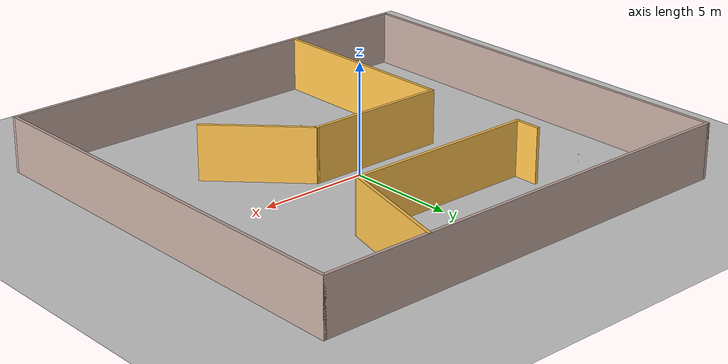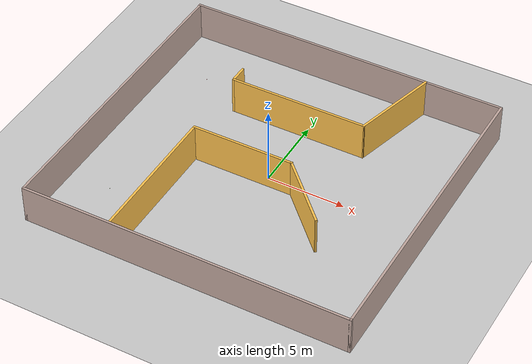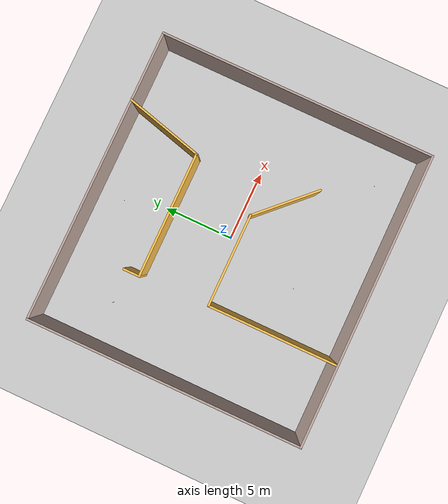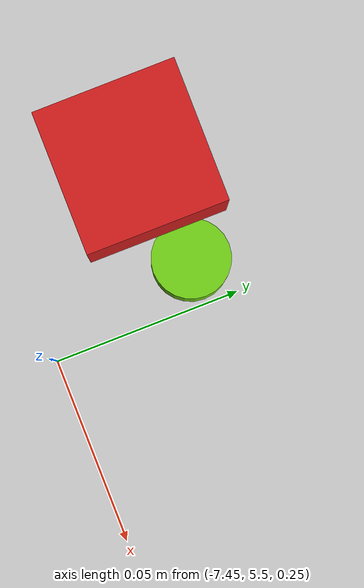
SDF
<?xml version="1.0" ?>
<sdf version="1.4">
  <world name="default">
    <gui fullscreen='0'>
      <camera name='user_camera'>
        <pose frame=''>8.18313 -3.28715 9.77259 0 0.855643 2.7162</pose>
        <view_controller>orbit</view_controller>
        <projection_type>perspective</projection_type>
      </camera>
    </gui>
    <physics type="ode">
      <gravity>0 0 -9.8</gravity>
      <ode>
        <solver>
          <type>quick</type>
          <iters>20</iters>
          <sor>1.0</sor>
        </solver>
        <constraints>
          <cfm>0.0</cfm>
          <erp>0.2</erp>
          <contact_max_correcting_vel>100.0</contact_max_correcting_vel>
          <contact_surface_layer>0.0</contact_surface_layer>
        </constraints>
      </ode>
      <max_step_size>0.001</max_step_size>
    </physics>
    <!-- A global light source -->
    <include>
      <uri>model://sun</uri>
    </include>
    <!-- A ground plane -->
    <include>
      <uri>model://ground_plane</uri>
    </include>
    <include>
      <uri>model://usar</uri>
      <pose>0 0 0.001 0 0 0</pose>
    </include>

    <model name="aruco_marker_0">
      <pose>4.803741 7.689550 0.4 0 0 2.857363</pose>
      <include>
        <name>aruco_marker_0</name>
        <uri>model://aruco_marker_0</uri>
      </include>
    </model>

    <model name="cylinder_1">
      <pose>-1.372126 -5.429016 0.274994 0 0 0</pose>
      <include>
        <name>cylinder_1</name>
        <uri>model://cylinder_green</uri>
      </include>
    </model>

    <model name="cylinder_2">
      <pose>-7.531620 -5.506830 0.274994 0 0 0</pose>
      <include>
        <name>cylinder_2</name>
        <uri>model://cylinder_green</uri>
      </include>
    </model>

    <model name="cylinder_3">
      <pose>-7.460810 5.541130 0.274994 0 0 0</pose>
      <include>
        <name>cylinder_3</name>
        <uri>model://cylinder_green</uri>
      </include>
    </model>

    <model name="cylinder_4">
      <pose>-0.727859 7.925042 0.274994 0 0 0</pose>
      <include>
        <name>cylinder_4</name>
        <uri>model://cylinder_green</uri>
      </include>
    </model>
    <model name="cylinder_5">
      <pose>7.499000 4.489690 0.274994 0 0 0</pose>
      <include>
        <name>cylinder_5</name>
        <uri>model://cylinder_green</uri>
      </include>
    </model>

    <model name="cylinder_6">
      <pose>7.572780 -7.596420 0.274994 0 0 0</pose>
      <include>
        <name>cylinder_6</name>
        <uri>model://cylinder_blue</uri>
      </include>
    </model>
    <model name="cube_1">
      <pose>-7.462762 5.530112 0.584022 0 0 0</pose>
      <include>
        <name>cube_red</name>
        <uri>model://cube_red</uri>
      </include>
    </model>
  </world>
</sdf>

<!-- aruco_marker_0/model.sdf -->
<sdf version='1.6'>
  <model name='aruco_marker_0'>
    <link name='link_0'>
      <pose frame=''>0 0 0 0 -0 0</pose>
      <inertial>
        <mass>1</mass>
        <inertia>
          <ixx>0</ixx>
          <ixy>0</ixy>
          <ixz>0</ixz>
          <iyy>0</iyy>
          <iyz>0</iyz>
          <izz>0</izz>
        </inertia>
      </inertial>
      <visual name='visual'>
        <pose frame=''>0 0 0 0 -0 0</pose>
        <geometry>
          <mesh>
            <uri>file://isr-testbed/aruco_marker_0/aruco_marker_0.dae</uri>
            <scale>0.1 0.1 0.1</scale>
          </mesh>
        </geometry>
        <material>
          <lighting>1</lighting>
          <script>
            <uri>file://media/materials/scripts/gazebo.material</uri>
            <name>Gazebo/DepthMapVS</name>
          </script>
          <ambient>0.3 0.3 0.3 1</ambient>
          <diffuse>0.7 0.7 0.7 1</diffuse>
          <specular>0.01 0.01 0.01 1</specular>
          <emissive>0 0 0 1</emissive>
        </material>
        <transparency>0</transparency>
        <cast_shadows>1</cast_shadows>
      </visual>
      <collision name='collision'>
        <laser_retro>0</laser_retro>
        <max_contacts>10</max_contacts>
        <pose frame=''>0 0 0 0 -0 0</pose>
        <geometry>
          <mesh>
            <uri>file://isr-testbed/aruco_marker_0/aruco_marker_0.dae</uri>
            <scale>0.1 0.1 0.1</scale>
          </mesh>
        </geometry>
        <surface>
          <friction>
            <ode>
              <mu>1</mu>
              <mu2>1</mu2>
              <fdir1>0 0 0</fdir1>
              <slip1>0</slip1>
              <slip2>0</slip2>
            </ode>
            <torsional>
              <coefficient>1</coefficient>
              <patch_radius>0</patch_radius>
              <surface_radius>0</surface_radius>
              <use_patch_radius>1</use_patch_radius>
              <ode>
                <slip>0</slip>
              </ode>
            </torsional>
          </friction>
          <bounce>
            <restitution_coefficient>0</restitution_coefficient>
            <threshold>1e+06</threshold>
          </bounce>
          <contact>
            <collide_without_contact>0</collide_without_contact>
            <collide_without_contact_bitmask>1</collide_without_contact_bitmask>
            <collide_bitmask>1</collide_bitmask>
            <ode>
              <soft_cfm>0</soft_cfm>
              <soft_erp>0.2</soft_erp>
              <kp>1e+13</kp>
              <kd>1</kd>
              <max_vel>0.01</max_vel>
              <min_depth>0</min_depth>
            </ode>
            <bullet>
              <split_impulse>1</split_impulse>
              <split_impulse_penetration_threshold>-0.01</split_impulse_penetration_threshold>
              <soft_cfm>0</soft_cfm>
              <soft_erp>0.2</soft_erp>
              <kp>1e+13</kp>
              <kd>1</kd>
            </bullet>
          </contact>
        </surface>
      </collision>
    </link>
    <static>1</static>
    <allow_auto_disable>1</allow_auto_disable>
  </model>
</sdf>

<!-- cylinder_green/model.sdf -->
<sdf version='1.6'>
  <model name='cylinder_green'>
    <link name='link_1'>
      <inertial>
        <mass>1e-4</mass>
        <inertia>
          <ixx>1.0e-8</ixx>
          <ixy>0</ixy>
          <ixz>0</ixz>
          <iyy>1.0e-8</iyy>
          <iyz>0</iyz>
          <izz>1.0e-8</izz>
        </inertia>
        <pose frame=''>0 0 0 0 -0 0</pose>
      </inertial>
      <pose frame=''>0 0 0 0 -0 0</pose>
      <gravity>1</gravity>
      <self_collide>0</self_collide>
      <kinematic>0</kinematic>
      <enable_wind>0</enable_wind>
      <visual name='visual'>
        <pose frame=''>0 0 0 0 -0 0</pose>
        <geometry>
          <cylinder>
            <radius>0.01</radius>
            <length>0.02</length>
          </cylinder>
        </geometry>
        <material>
          <lighting>1</lighting>
          <script>
            <uri>file://media/materials/scripts/gazebo.material</uri>
            <name>Gazebo/Grey</name>
          </script>
          <shader type='vertex'>
            <normal_map>__default__</normal_map>
          </shader>
          <ambient>0.208 0.706 0.298 1</ambient>
          <diffuse>0.451 0.824 0.082 1</diffuse>
          <specular>0.18 0.204 0.212 1</specular>
          <emissive>0 0 0 1</emissive>
        </material>
        <transparency>0</transparency>
        <cast_shadows>1</cast_shadows>
      </visual>
      <collision name='collision'>
        <laser_retro>0</laser_retro>
        <max_contacts>50</max_contacts>
        <pose frame=''>0 0 0 0 -0 0</pose>
        <geometry>
          <cylinder>
            <radius>0.01</radius>
            <length>0.02</length>
          </cylinder>
        </geometry>
        <surface>
          <friction>
            <ode>
              <mu>1e+6</mu>
              <mu2>1e+6</mu2>
            </ode>
            <torsional>
              <coefficient>1</coefficient>
              <patch_radius>0</patch_radius>
              <surface_radius>0</surface_radius>
              <use_patch_radius>1</use_patch_radius>
              <ode>
                <slip>0</slip>
              </ode>
            </torsional>
          </friction>
          <bounce>
            <restitution_coefficient>0</restitution_coefficient>
            <threshold>1e+06</threshold>
          </bounce>
          <contact>
            <collide_without_contact>0</collide_without_contact>
            <collide_without_contact_bitmask>1</collide_without_contact_bitmask>
            <collide_bitmask>1</collide_bitmask>
            <ode>
              <soft_cfm>0</soft_cfm>
              <soft_erp>0.2</soft_erp>
              <kp>1e+13</kp>
              <kd>1</kd>
              <max_vel>0.0</max_vel>
              <min_depth>0.002</min_depth>
            </ode>
            <bullet>
              <split_impulse>1</split_impulse>
              <split_impulse_penetration_threshold>-0.01</split_impulse_penetration_threshold>
              <soft_cfm>0</soft_cfm>
              <soft_erp>0.2</soft_erp>
              <kp>1e+13</kp>
              <kd>1</kd>
            </bullet>
          </contact>
        </surface>
      </collision>
    </link>
    <static>0</static>
    <allow_auto_disable>1</allow_auto_disable>
  </model>
</sdf>

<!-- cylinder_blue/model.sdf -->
<sdf version='1.6'>
  <model name='cylinder_blue'>
    <link name='link_1'>
      <inertial>
        <mass>1e-4</mass>
        <inertia>
          <ixx>1.0e-8</ixx>
          <ixy>0</ixy>
          <ixz>0</ixz>
          <iyy>1.0e-8</iyy>
          <iyz>0</iyz>
          <izz>1.0e-8</izz>
        </inertia>
        <pose frame=''>0 0 0 0 -0 0</pose>
      </inertial>
      <pose frame=''>0 0 0 0 -0 0</pose>
      <gravity>1</gravity>
      <self_collide>0</self_collide>
      <kinematic>0</kinematic>
      <enable_wind>0</enable_wind>
      <visual name='visual'>
        <pose frame=''>0 0 0 0 -0 0</pose>
        <geometry>
          <cylinder>
            <radius>0.01</radius>
            <length>0.02</length>
          </cylinder>
        </geometry>
        <material>
          <lighting>1</lighting>
          <script>
            <uri>file://media/materials/scripts/gazebo.material</uri>
            <name>Gazebo/Grey</name>
          </script>
          <shader type='vertex'>
            <normal_map>__default__</normal_map>
          </shader>
          <ambient>0.204 0.396 0.643 1</ambient>
          <diffuse>0.204 0.396 0.643 1</diffuse>
          <specular>0.333 0.341 0.325 1</specular>
          <emissive>0 0 0 1</emissive>
        </material>
        <transparency>0</transparency>
        <cast_shadows>1</cast_shadows>
      </visual>
      <collision name='collision'>
        <laser_retro>0</laser_retro>
        <max_contacts>50</max_contacts>
        <pose frame=''>0 0 0 0 -0 0</pose>
        <geometry>
          <cylinder>
            <radius>0.01</radius>
            <length>0.02</length>
          </cylinder>
        </geometry>
        <surface>
          <friction>
            <ode>
              <mu>1e+6</mu>
              <mu2>1e+6</mu2>
            </ode>
            <torsional>
              <coefficient>1</coefficient>
              <patch_radius>0</patch_radius>
              <surface_radius>0</surface_radius>
              <use_patch_radius>1</use_patch_radius>
              <ode>
                <slip>0</slip>
              </ode>
            </torsional>
          </friction>
          <bounce>
            <restitution_coefficient>0</restitution_coefficient>
            <threshold>1e+06</threshold>
          </bounce>
          <contact>
            <collide_without_contact>0</collide_without_contact>
            <collide_without_contact_bitmask>1</collide_without_contact_bitmask>
            <collide_bitmask>1</collide_bitmask>
            <ode>
              <soft_cfm>0</soft_cfm>
              <soft_erp>0.2</soft_erp>
              <kp>1e+13</kp>
              <kd>1</kd>
              <max_vel>0.0</max_vel>
              <min_depth>0.002</min_depth>
            </ode>
            <bullet>
              <split_impulse>1</split_impulse>
              <split_impulse_penetration_threshold>-0.01</split_impulse_penetration_threshold>
              <soft_cfm>0</soft_cfm>
              <soft_erp>0.2</soft_erp>
              <kp>1e+13</kp>
              <kd>1</kd>
            </bullet>
          </contact>
        </surface>
      </collision>
    </link>
    <static>0</static>
    <allow_auto_disable>1</allow_auto_disable>
  </model>
</sdf>

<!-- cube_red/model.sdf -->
<sdf version='1.6'>
  <model name='cube_red'>
    <link name='link_1'>
      <inertial>
        <mass>1e-4</mass>
        <inertia>
          <ixx>1.0e-8</ixx>
          <ixy>0</ixy>
          <ixz>0</ixz>
          <iyy>1.0e-8</iyy>
          <iyz>0</iyz>
          <izz>1.0e-8</izz>
        </inertia>
        <pose frame=''>0 0 0 0 -0 0</pose>
      </inertial>
      <pose frame=''>0 0 0 0 -0 0</pose>
      <gravity>1</gravity>
      <self_collide>0</self_collide>
      <kinematic>0</kinematic>
      <enable_wind>0</enable_wind>
      <visual name='visual'>
        <pose frame=''>0 0 0 0 -0 0</pose>
        <geometry>
          <box>
            <size>0.02 0.02 0.02</size>
          </box>
        </geometry>
        <material>
          <lighting>1</lighting>
          <script>
            <uri>file://media/materials/scripts/gazebo.material</uri>
            <name>Gazebo/Grey</name>
          </script>
          <shader type='vertex'>
            <normal_map>__default__</normal_map>
          </shader>
          <ambient>0.643 0 0 1</ambient>
          <diffuse>0.835 0.114 0.114 1</diffuse>
          <specular>0.333 0.341 0.325 1</specular>
          <emissive>0 0 0 1</emissive>
        </material>
        <transparency>0</transparency>
        <cast_shadows>1</cast_shadows>
      </visual>
      <collision name='collision'>
        <laser_retro>0</laser_retro>
        <max_contacts>50</max_contacts>
        <pose frame=''>0 0 0 0 -0 0</pose>
        <geometry>
          <box>
            <size>0.02 0.02 0.02</size>
          </box>
        </geometry>
        <surface>
          <friction>
            <ode>
              <mu>1e+6</mu>
              <mu2>1e+6</mu2>
            </ode>
            <torsional>
              <coefficient>1</coefficient>
              <patch_radius>0</patch_radius>
              <surface_radius>0</surface_radius>
              <use_patch_radius>1</use_patch_radius>
              <ode>
                <slip>0</slip>
              </ode>
            </torsional>
          </friction>
          <bounce>
            <restitution_coefficient>0</restitution_coefficient>
            <threshold>1e+06</threshold>
          </bounce>
          <contact>
            <collide_without_contact>0</collide_without_contact>
            <collide_without_contact_bitmask>1</collide_without_contact_bitmask>
            <collide_bitmask>1</collide_bitmask>
            <ode>
              <soft_cfm>0</soft_cfm>
              <soft_erp>0.2</soft_erp>
              <kp>1e+13</kp>
              <kd>1</kd>
              <max_vel>0.0</max_vel>
              <min_depth>0.002</min_depth>
            </ode>
            <bullet>
              <split_impulse>1</split_impulse>
              <split_impulse_penetration_threshold>-0.01</split_impulse_penetration_threshold>
              <soft_cfm>0</soft_cfm>
              <soft_erp>0.2</soft_erp>
              <kp>1e+13</kp>
              <kd>1</kd>
            </bullet>
          </contact>
        </surface>
      </collision>
    </link>
    <static>0</static>
    <allow_auto_disable>1</allow_auto_disable>
  </model>
</sdf>

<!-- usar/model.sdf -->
<sdf version='1.6'>
  <model name='usar'>
    <pose frame=''>0.132 0.177 0 0 -0 0</pose>
    <link name='Wall_0'>
      <collision name='Wall_0_Collision'>
        <geometry>
          <box>
            <size>21 0.15 2.5</size>
          </box>
        </geometry>
        <pose frame=''>0 0 1.25 0 -0 0</pose>
      </collision>
      <visual name='Wall_0_Visual'>
        <pose frame=''>0 0 1.25 0 -0 0</pose>
        <geometry>
          <box>
            <size>21 0.15 2.5</size>
          </box>
        </geometry>
        <material>
          <script>
            <uri>file://media/materials/scripts/gazebo.material</uri>
            <name>Gazebo/Grey</name>
          </script>
          <ambient>0.760784 0.662745 0.627451 1</ambient>
        </material>
        <meta>
          <layer>0</layer>
        </meta>
      </visual>
      <pose frame=''>0 -9.8 0 0 -0 0</pose>
    </link>
    <link name='Wall_10'>
      <collision name='Wall_10_Collision'>
        <geometry>
          <box>
            <size>5.75 0.15 2.5</size>
          </box>
        </geometry>
        <pose frame=''>0 0 1.25 0 -0 0</pose>
      </collision>
      <visual name='Wall_10_Visual'>
        <pose frame=''>0 0 1.25 0 -0 0</pose>
        <geometry>
          <box>
            <size>5.75 0.15 2.5</size>
          </box>
        </geometry>
        <material>
          <script>
            <uri>file://media/materials/scripts/gazebo.material</uri>
            <name>Gazebo/Grey</name>
          </script>
          <ambient>1 0.764706 0.305882 1</ambient>
        </material>
        <meta>
          <layer>0</layer>
        </meta>
      </visual>
      <pose frame=''>4.736 7.0785 0 0 -0 -1.83271</pose>
    </link>
    <link name='Wall_11'>
      <collision name='Wall_11_Collision'>
        <geometry>
          <box>
            <size>9 0.15 2.5</size>
          </box>
        </geometry>
        <pose frame=''>0 0 1.25 0 -0 0</pose>
      </collision>
      <visual name='Wall_11_Visual'>
        <pose frame=''>0 0 1.25 0 -0 0</pose>
        <geometry>
          <box>
            <size>9 0.15 2.5</size>
          </box>
        </geometry>
        <material>
          <script>
            <uri>file://media/materials/scripts/gazebo.material</uri>
            <name>Gazebo/Grey</name>
          </script>
          <ambient>1 0.764706 0.305882 1</ambient>
        </material>
        <meta>
          <layer>0</layer>
        </meta>
      </visual>
      <pose frame=''>-0.414 4.374 0 0 -0 3.14159</pose>
    </link>
    <link name='Wall_12'>
      <collision name='Wall_12_Collision'>
        <geometry>
          <box>
            <size>1.25 0.15 2.5</size>
          </box>
        </geometry>
        <pose frame=''>0 0 1.25 0 -0 0</pose>
      </collision>
      <visual name='Wall_12_Visual'>
        <pose frame=''>0 0 1.25 0 -0 0</pose>
        <geometry>
          <box>
            <size>1.25 0.15 2.5</size>
          </box>
        </geometry>
        <material>
          <script>
            <uri>file://media/materials/scripts/gazebo.material</uri>
            <name>Gazebo/Grey</name>
          </script>
          <ambient>1 0.764706 0.305882 1</ambient>
        </material>
        <meta>
          <layer>0</layer>
        </meta>
      </visual>
      <pose frame=''>-4.839 4.924 0 0 -0 1.5708</pose>
    </link>
    <link name='Wall_2'>
      <collision name='Wall_2_Collision'>
        <geometry>
          <box>
            <size>19.75 0.15 2.5</size>
          </box>
        </geometry>
        <pose frame=''>0 0 1.25 0 -0 0</pose>
      </collision>
      <visual name='Wall_2_Visual'>
        <pose frame=''>0 0 1.25 0 -0 0</pose>
        <geometry>
          <box>
            <size>19.75 0.15 2.5</size>
          </box>
        </geometry>
        <material>
          <script>
            <uri>file://media/materials/scripts/gazebo.material</uri>
            <name>Gazebo/Grey</name>
          </script>
          <ambient>0.760784 0.662745 0.627451 1</ambient>
        </material>
        <meta>
          <layer>0</layer>
        </meta>
      </visual>
      <pose frame=''>-10.425 -0 0 0 -0 1.5708</pose>
    </link>
    <link name='Wall_3'>
      <collision name='Wall_3_Collision'>
        <geometry>
          <box>
            <size>21 0.15 2.5</size>
          </box>
        </geometry>
        <pose frame=''>0 0 1.25 0 -0 0</pose>
      </collision>
      <visual name='Wall_3_Visual'>
        <pose frame=''>0 0 1.25 0 -0 0</pose>
        <geometry>
          <box>
            <size>21 0.15 2.5</size>
          </box>
        </geometry>
        <material>
          <script>
            <uri>file://media/materials/scripts/gazebo.material</uri>
            <name>Gazebo/Grey</name>
          </script>
          <ambient>0.760784 0.662745 0.627451 1</ambient>
        </material>
        <meta>
          <layer>0</layer>
        </meta>
      </visual>
      <pose frame=''>0 9.8 0 0 -0 0</pose>
    </link>
    <link name='Wall_4'>
      <collision name='Wall_4_Collision'>
        <geometry>
          <box>
            <size>19.75 0.15 2.5</size>
          </box>
        </geometry>
        <pose frame=''>0 0 1.25 0 -0 0</pose>
      </collision>
      <visual name='Wall_4_Visual'>
        <pose frame=''>0 0 1.25 0 -0 0</pose>
        <geometry>
          <box>
            <size>19.75 0.15 2.5</size>
          </box>
        </geometry>
        <material>
          <script>
            <uri>file://media/materials/scripts/gazebo.material</uri>
            <name>Gazebo/Grey</name>
          </script>
          <ambient>0.760784 0.662745 0.627451 1</ambient>
        </material>
        <meta>
          <layer>0</layer>
        </meta>
      </visual>
      <pose frame=''>10.425 -0 0 0 -0 -1.5708</pose>
    </link>
    <link name='Wall_6'>
      <collision name='Wall_6_Collision'>
        <geometry>
          <box>
            <size>9.25 0.15 2.5</size>
          </box>
        </geometry>
        <pose frame=''>0 0 1.25 0 -0 0</pose>
      </collision>
      <visual name='Wall_6_Visual'>
        <pose frame=''>0 0 1.25 0 -0 0</pose>
        <geometry>
          <box>
            <size>9.25 0.15 2.5</size>
          </box>
        </geometry>
        <material>
          <script>
            <uri>file://media/materials/scripts/gazebo.material</uri>
            <name>Gazebo/Grey</name>
          </script>
          <ambient>1 0.764706 0.305882 1</ambient>
        </material>
        <meta>
          <layer>0</layer>
        </meta>
      </visual>
      <pose frame=''>-4.671 -5.097 0 0 -0 1.5708</pose>
    </link>
    <link name='Wall_7'>
      <collision name='Wall_7_Collision'>
        <geometry>
          <box>
            <size>6.65748 0.15 2.5</size>
          </box>
        </geometry>
        <pose frame=''>0 0 1.25 0 -0 0</pose>
      </collision>
      <visual name='Wall_7_Visual'>
        <pose frame=''>0 0 1.25 0 -0 0</pose>
        <geometry>
          <box>
            <size>6.65748 0.15 2.5</size>
          </box>
        </geometry>
        <material>
          <script>
            <uri>file://media/materials/scripts/gazebo.material</uri>
            <name>Gazebo/Grey</name>
          </script>
          <ambient>1 0.764706 0.305882 1</ambient>
        </material>
        <meta>
          <layer>0</layer>
        </meta>
      </visual>
      <pose frame=''>-1.417 -0.547 0 0 -0 0</pose>
    </link>
    <link name='Wall_8'>
      <collision name='Wall_8_Collision'>
        <geometry>
          <box>
            <size>5.03243 0.15 2.5</size>
          </box>
        </geometry>
        <pose frame=''>0 0 1.25 0 -0 0</pose>
      </collision>
      <visual name='Wall_8_Visual'>
        <pose frame=''>0 0 1.25 0 -0 0</pose>
        <geometry>
          <box>
            <size>5.03243 0.15 2.5</size>
          </box>
        </geometry>
        <material>
          <script>
            <uri>file://media/materials/scripts/gazebo.material</uri>
            <name>Gazebo/Grey</name>
          </script>
          <ambient>1 0.764706 0.305882 1</ambient>
        </material>
        <meta>
          <layer>0</layer>
        </meta>
      </visual>
      <pose frame=''>3.5515 -2.2845 0 0 -0 -0.792061</pose>
    </link>
    <static>1</static>
  </model>
</sdf>
